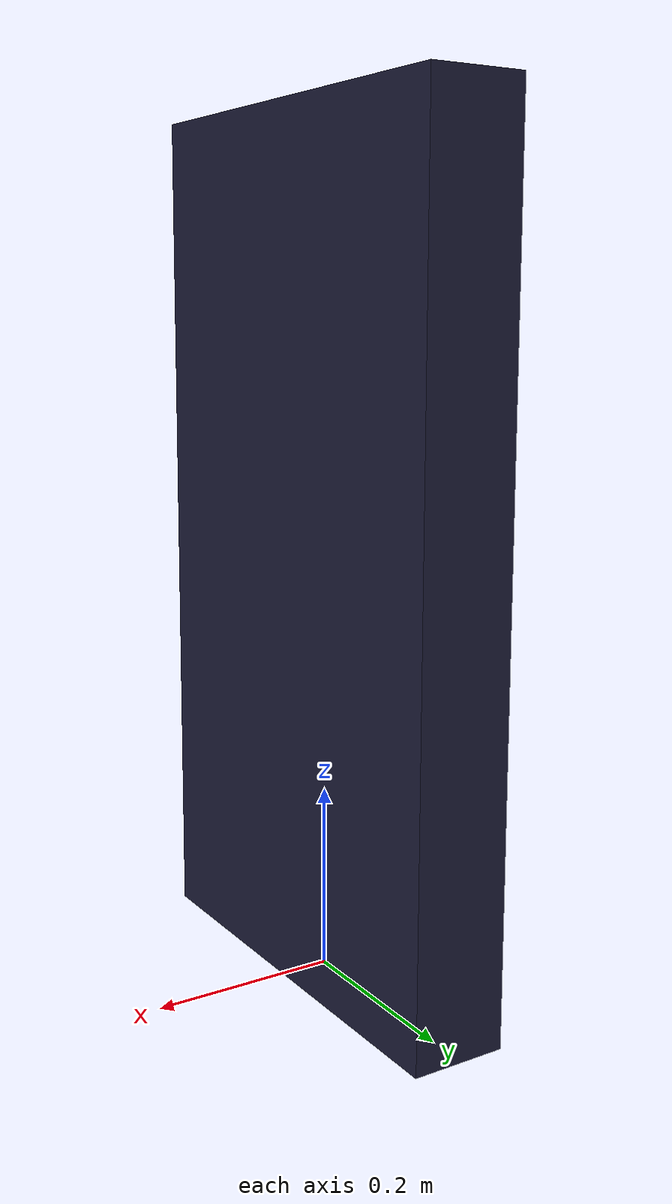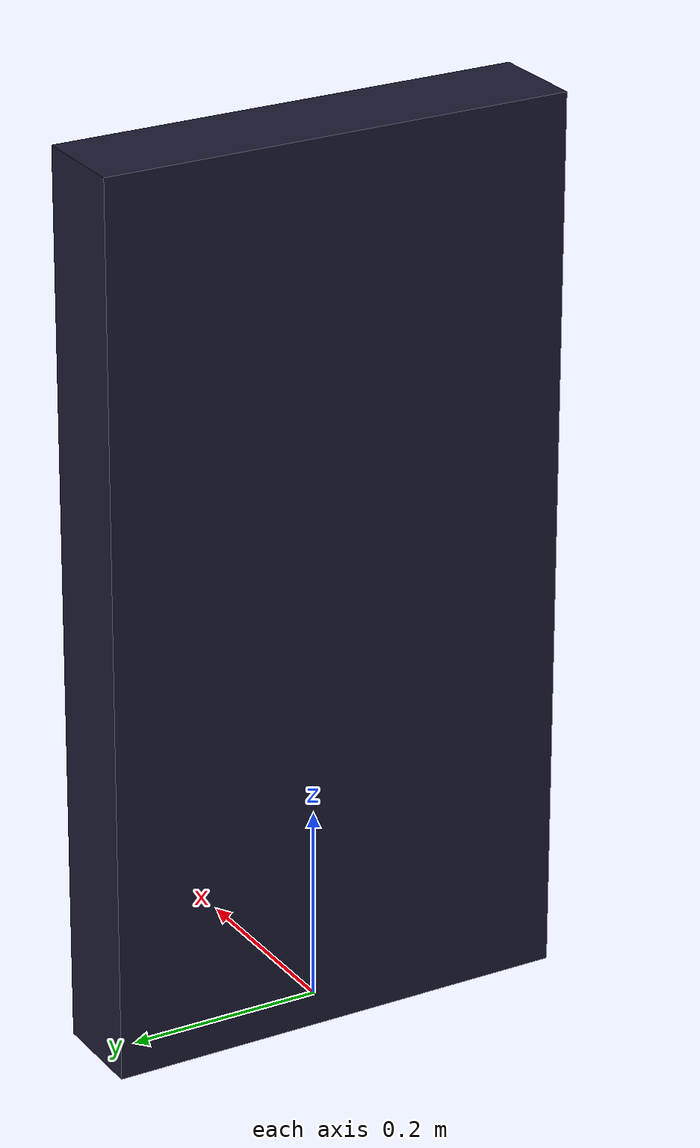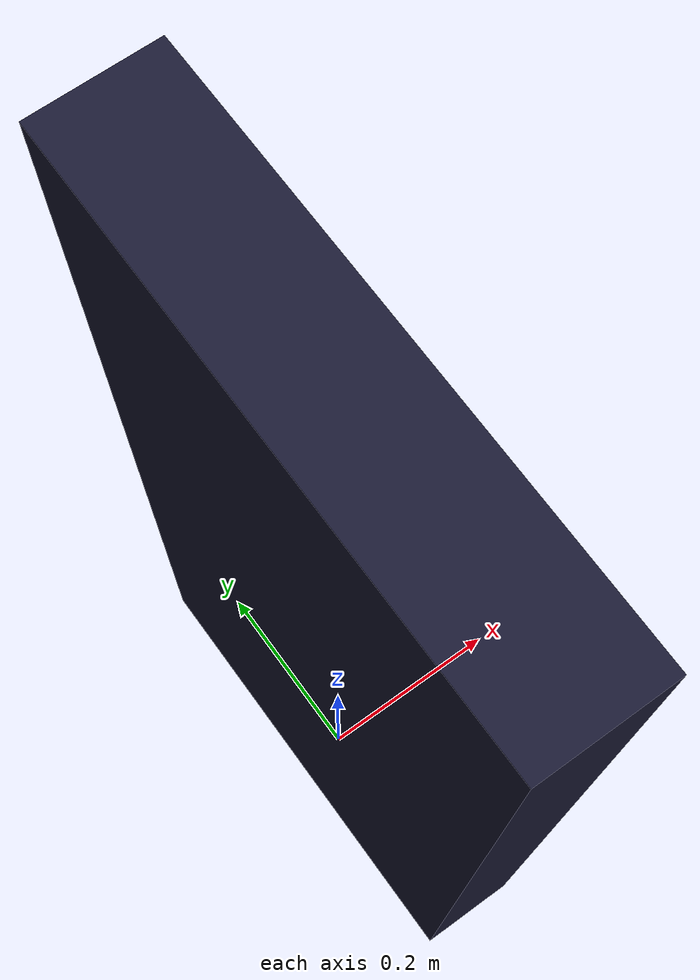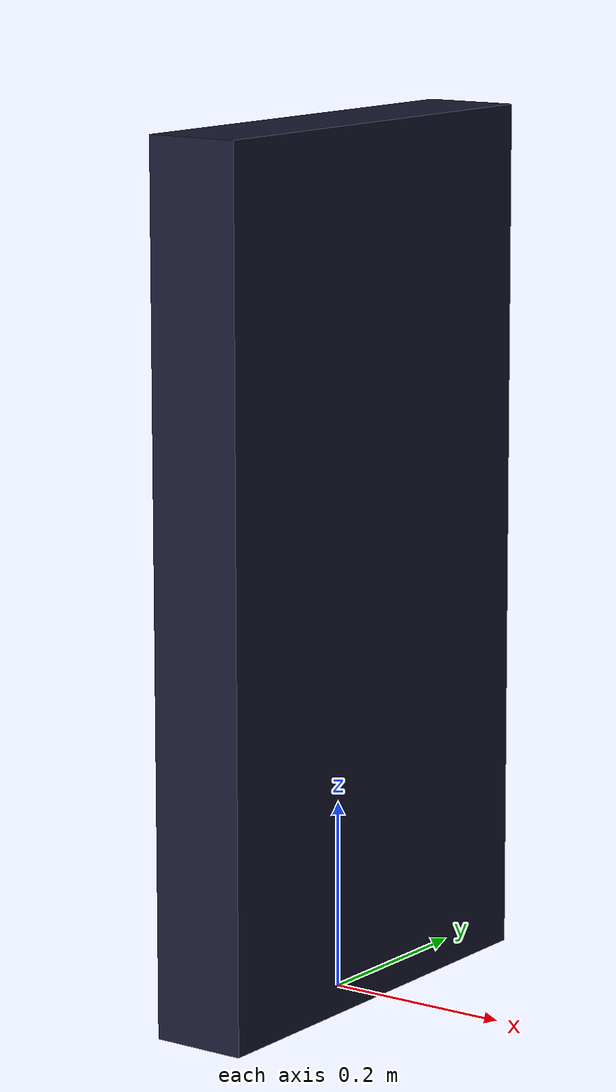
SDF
<?xml version="1.0" ?>
<sdf version="1.6">
  <model name="monolith">
  <pose>0 0 0.455 0 0 0</pose>
  <static>true</static>
    <link name="link">
      <inertial>
        <mass>1.0</mass>
        <inertia>
          <ixx>0.354918</ixx>
          <ixy>0.0</ixy>
          <ixz>0.0</ixz>
          <iyy>0.281021373</iyy>
          <iyz>0.0</iyz>
          <izz>0.080750806</izz>
        </inertia>
      </inertial>
      <collision name="collision">
        <geometry>
          <box>
            <size>0.1016 0.4826 0.9144</size>
          </box>
        </geometry>
      </collision>
      <visual name="visual">
        <geometry>
          <box>
            <size>0.1016 0.4826 0.9144</size>
          </box>
        </geometry>
        <material>
          <ambient>0.1 0.1 0.1 1</ambient>
          <diffuse>0.1 0.1 0.2 1</diffuse>
          <specular>0 0 0 0</specular>
          <emissive>0 0 0 1</emissive>
        </material>
      </visual>
    </link>
  </model>
</sdf>
